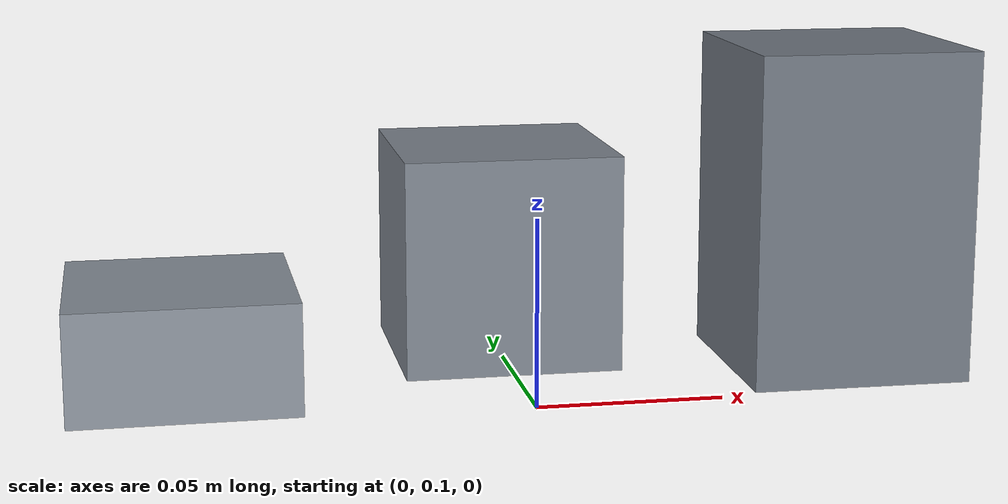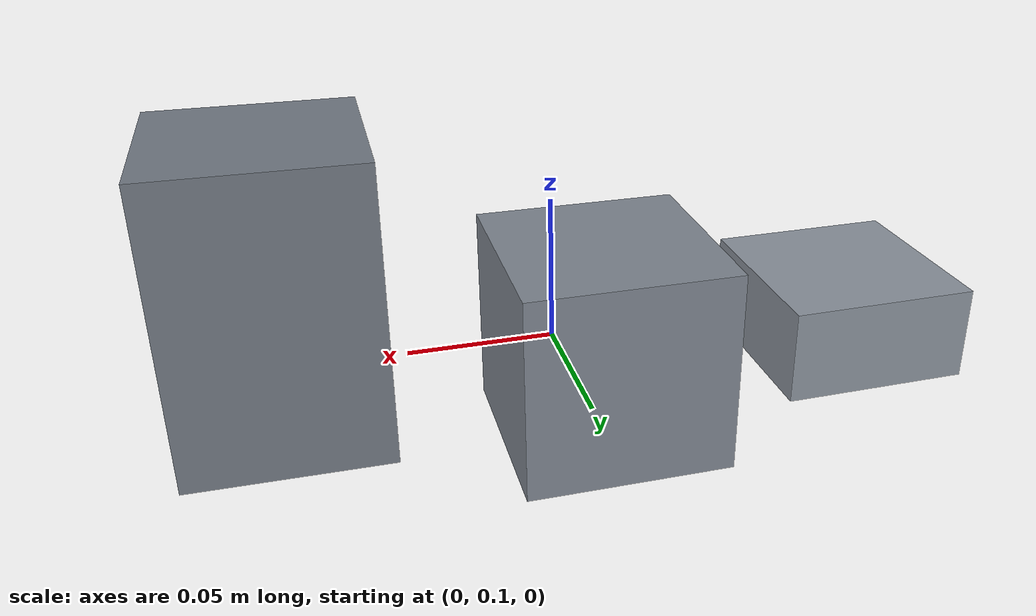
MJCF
<mujoco model="prop_stair">
  <worldbody>
    <body name="stair">
      <geom name="stair_1" type="box" pos="-0.0903 0.1321 0.015"
            size="0.030 0.030 0.015" euler="0 0 0.60"
            mass="0" contype="1" conaffinity="2" rgba="0.55 0.58 0.62 1"/>
      <geom name="stair_2" type="box" pos="0.0000 0.1600 0.030"
            size="0.030 0.030 0.030" euler="0 0 0"
            mass="0" contype="1" conaffinity="2" rgba="0.50 0.53 0.57 1"/>
      <geom name="stair_3" type="box" pos="0.0903 0.1321 0.045"
            size="0.030 0.030 0.045" euler="0 0 -0.60"
            mass="0" contype="1" conaffinity="2" rgba="0.45 0.48 0.52 1"/>
    </body>
  </worldbody>
</mujoco>
